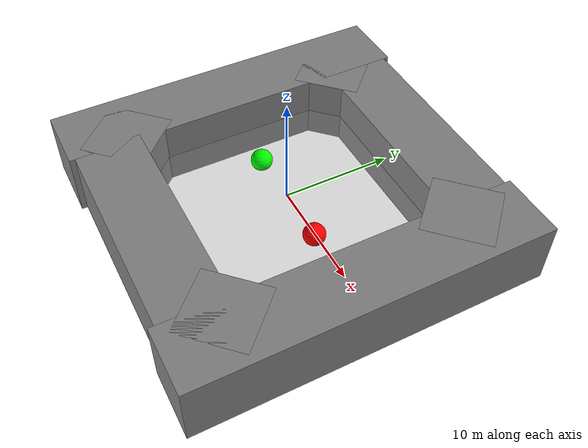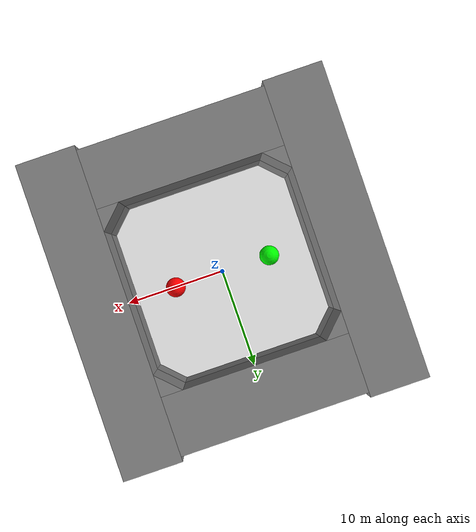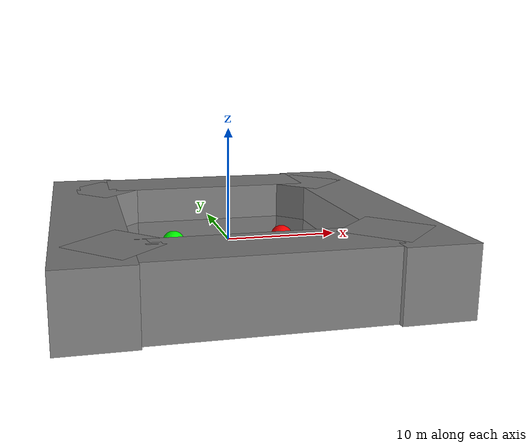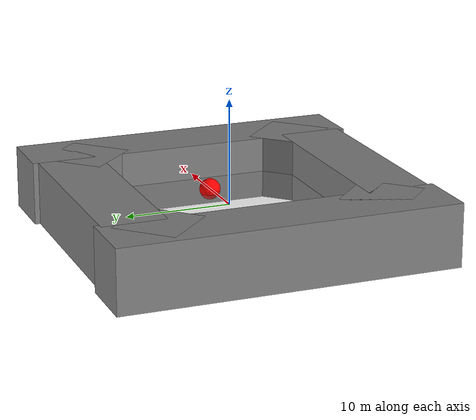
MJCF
<mujoco>
    <compiler coordinate="local" angle="degree" inertiafromgeom="auto"/>
    <option timestep="0.0005" apirate="100" wind="0 0 0" density="1.2" viscosity="0" cone="elliptic"/>
    <worldbody>
        <light diffuse=".5 .5 .5" pos="0 0 3" dir="0 0 -1"/>
        <geom type="plane" pos="0 0 -0.325" size="10 10 0.1" contype="1" conaffinity="1"/>
        <body name="walls" pos="0 0 0">
            <geom type="box" pos="12.5 0 0" size="3 16 3" conaffinity="1" contype="1" condim="6"/>
            <geom type="box" pos="-12.5 0 0" size="3 16 3" conaffinity="1" contype="1" condim="6"/>
            <geom type="box" pos="0 12.5 0" size="10 3 3" conaffinity="1" contype="1" condim="6"/>
            <geom type="box" pos="0 -12.5 0" size="10 3 3" conaffinity="1" contype="1" condim="6"/>
            <geom type="box" pos="10.5 -10.5 0" size="3 3 3" euler="0 0 45" conaffinity="1" contype="1" condim="6"/>
            <geom type="box" pos="-10.5 10.5 0" size="3 3 3" euler="0 0 45" conaffinity="1" contype="1" condim="6"/>
            <geom type="box" pos="-10.5 -10.5 0" size="3 3 3" euler="0 0 45" conaffinity="1" contype="1" condim="6"/>
            <geom type="box" pos="10.5 10.5 0" size="3 3 3" euler="0 0 45" conaffinity="1" contype="1" condim="6"/>
        </body>
        <body name="Chaser" pos="5 0 0">
            <geom rgba="1 0 0 1" type="sphere" condim="6" size="1" conaffinity="1" contype="1"/>
            <joint name="cx" type="slide" pos="0 0 0" axis="1 0 0" limited="true" range="-11 1" damping="1.0"/>
            <joint name="cy" type="slide" pos="0 0 0" axis="0 1 0" limited="true" range="-6 6" damping="1.0"/>
        </body>
        <body name="Runner" pos="-5 0 0">
            <geom rgba="0 1 0 1" type="sphere" condim="6" size="1" conaffinity="1" contype="1"/>
            <joint name="rx" type="slide" pos="0 0 0" axis="1 0 0" limited="true" range="0.8 9.3" damping="1.0"/>
            <joint name="ry" type="slide" pos="0 0 0" axis="0 1 0" limited="true" range="-4 4" damping="1.0"/>
        </body>
    </worldbody>
</mujoco>
